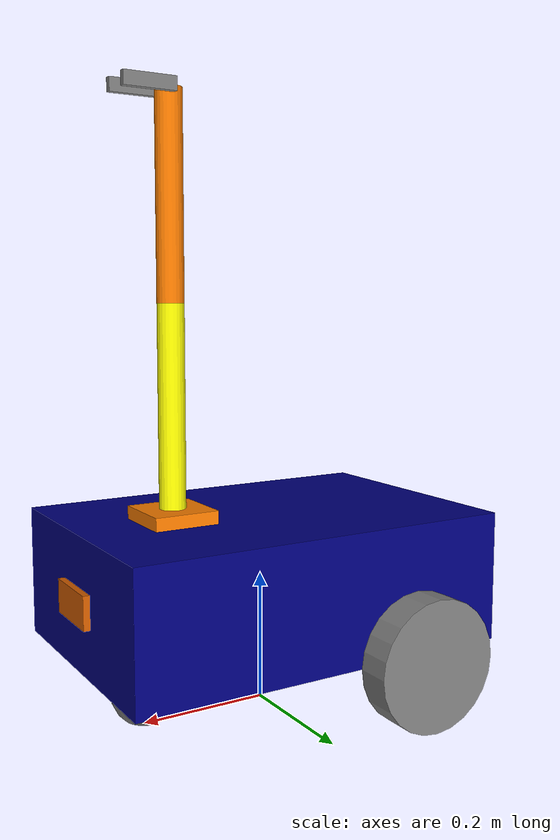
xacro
<?xml version="1.0"?>

<robot name="my_robot" xmlns:xacro="http://www.ros.org/wiki/xacro">

    <xacro:include filename="common_properties.xacro" />
    <xacro:include filename="mobile_base.xacro" />
    <xacro:include filename="mobile_base_gazebo.xacro" />
    <xacro:include filename="camera.xacro" />
    <xacro:include filename="arm.xacro" />

</robot>

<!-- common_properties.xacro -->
<robot xmlns:xacro="http://www.ros.org/wiki/xacro">
    <material name="blue">
        <color rgba="0 0 0.5 1" />
    </material>

    <material name="gray">
        <color rgba="0.5 0.5 0.5 1" />
    </material>

    <material name="orange">
        <color rgba="1 0.5 0 1"/>
    </material>

    <material name="yellow">
        <color rgba="1 1 0 1"/>
    </material>

    <xacro:macro name="box_inertia" params="m x y z o_xyz o_rpy">
        <inertial>
            <mass value="${m}" />
            <origin xyz="${o_xyz}" rpy="${o_rpy}" />
            <inertia ixx="${(m/12) * (y*y + z*z)}" ixy="0" ixz="0"  iyy="${(m/12) * (x*x + z*z)}" iyz="0" izz="${(m/12) * (y*y + x*x)}" />
        </inertial>
    </xacro:macro>

    <xacro:macro name="cylinder_inertia" params="m r l o_xyz o_rpy">
        <inertial>
            <mass value="${m}" />
            <origin xyz="${o_xyz}" rpy="${o_rpy}" />
            <inertia ixx="${(m/12) * (3*r*r + l*l)}" ixy="0" ixz="0"  iyy="${(m/12) * (3*r*r + l*l)}" iyz="0" izz="${(m/2) * (r*r)}" />
        </inertial>
    </xacro:macro>

    <xacro:macro name="sphere_inertia" params="m r o_xyz o_rpy">
        <inertial>
            <mass value="${m}" />
            <origin xyz="${o_xyz}" rpy="${o_rpy}" />
            <inertia ixx="${(2/5) * m * r * r}" ixy="0" ixz="0"  iyy="${(2/5) * m * r * r}" iyz="0" izz="${(2/5) * m * r * r}" />
        </inertial>
    </xacro:macro>

</robot>

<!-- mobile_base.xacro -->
<robot xmlns:xacro="http://www.ros.org/wiki/xacro">

    <xacro:property name="base_length" value="0.6" />
    <xacro:property name="base_width" value="0.4" />
    <xacro:property name="base_height" value="0.2" />
    <xacro:property name="wheel_radius" value="0.1" />
    <xacro:property name="wheel_length" value="0.05" />

     <link name="base_footprint" />

    <link name="base_link">
        <visual>
            <geometry>
                <box size="${base_length} ${base_width} ${base_height}" />
            </geometry>
            <origin xyz="0 0 ${base_height / 2.0}" rpy="0 0 0" />
            <material name="blue" />
        </visual>
        <collision>
            <geometry>
                <box size="${base_length} ${base_width} ${base_height}" />
            </geometry>
            <origin xyz="0 0 ${base_height / 2.0}" rpy="0 0 0" />
        </collision>

        <xacro:box_inertia m="5.0" x="${base_length}" y="${base_width}" z="${base_height}" o_xyz="0 0 ${base_height / 2.0}" o_rpy="0 0 0" />

    </link>

    <xacro:macro name="wheel_link" params="prefix">
        <link name="${prefix}_wheel_link">
            <visual>
                <geometry>
                    <cylinder radius="${wheel_radius}" length="${wheel_length}" />

                </geometry>
                <origin xyz="0 0 0" rpy="1.57 0 0" />
                <material name="gray" />
            </visual>
            <collision>
                <geometry>
                    <sphere radius="${wheel_radius}" />
                </geometry>
                <origin xyz="0 0 0" rpy="0 0 0" />

            </collision>

            <xacro:cylinder_inertia m="1.0" r="${wheel_radius}" l="${wheel_length}" o_xyz="0 0 0" o_rpy="1.57 0 0" />
        </link>
    </xacro:macro>

    <xacro:wheel_link prefix="right" />
    <xacro:wheel_link prefix="left"  />

    <link name="caster_wheel_link">
        <visual>
            <geometry>
                <sphere radius="${wheel_radius / 2.0}" />

            </geometry>
            <origin xyz="0 0 0" rpy="0 0 0" />
            <material name="gray" />
        </visual>

        <collision>
            <geometry>
                <sphere radius="${wheel_radius / 2.0}" />
            </geometry>
            <origin xyz="0 0 0" rpy="0 0 0" />

        </collision>

        <xacro:sphere_inertia m="0.5" r="${wheel_radius / 2.0}" o_xyz="0 0 0" o_rpy="0 0 0" />
    </link>

    <joint name="base_joint" type="fixed">
        <parent link="base_footprint" />
        <child link="base_link" />
        <origin xyz="0 0 ${wheel_radius}" rpy="0 0 0" />
    </joint>

    <joint name="base_right_wheel_joint" type="continuous">
        <parent link="base_link" />
        <child link="right_wheel_link" />
        <origin xyz="${-base_length / 4.0} ${-(base_width + wheel_length) / 2.0} 0" rpy="0 0 0" />
        <axis xyz="0 1 0" />
    </joint>

    <joint name="base_left_wheel_joint" type="continuous">
        <parent link="base_link" />
        <child link="left_wheel_link" />
        <origin xyz="${-base_length / 4.0} ${(base_width + wheel_length) / 2.0} 0" rpy="0 0 0" />
        <axis xyz="0 1 0" />
    </joint>

    <joint name="base_caster_wheel_joint" type="fixed">
        <parent link="base_link" />
        <child link="caster_wheel_link" />
        <origin xyz="${base_length / 3.0} 0 ${-wheel_radius / 2.0}" rpy="0 0 0" />
        <axis xyz="0 0 0" />
    </joint>

    <joint name="mobilebase_to_arm_joint"
           type="fixed">

        <parent link="base_link"/>

        <child link="arm_base_link"/>

        <!-- position of arm on robot -->
        <origin xyz="0.15 0 0.2"
                rpy="0 0 0"/>

    </joint>
</robot>

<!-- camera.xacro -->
<robot xmlns:xacro="http://www.ros.org/wiki/xacro">

    <xacro:property name="camera_length" value="0.01" />
    <xacro:property name="camera_width" value="0.1" />
    <xacro:property name="camera_height" value="0.05" />

    <link name="camera_link">
        <visual>
            <geometry>
                <box size="${camera_length} ${camera_width} ${camera_height}" />
            </geometry>
            <materia name="grey" />
        </visual>
        <collision>
            <geometry>
                <box size="${camera_length} ${camera_width} ${camera_height}" />
            </geometry>
        </collision>
        <xacro:box_inertia m="0.1" x="${camera_length}" y="${camera_width}" z="${camera_height}" o_xyz="0 0 0" o_rpy="0 0 0" />
    </link>

    <joint name="base_camera_joint" type="fixed">
        <parent link="base_link" />
        <child link="camera_link" />
        <origin xyz="${(base_length + camera_length)/2.0} 0 ${base_height/2.0}" rpy="0 0 0" />
    </joint>

    <gazebo reference="camera_link">
        <sensor name="camera" type="camera">

            <update_rate>20</update_rate>

            <camera>
                <horizontal_fov>1.3962634</horizontal_fov>

                <image>
                    <width>640</width>
                    <height>480</height>
                    <format>R8G8B8</format>
                </image>
                <optical_frame_id>camera_link</optical_frame_id>
                <camera_info_topic>camera/camera_info</camera_info_topic>
            </camera>

            <always_on>true</always_on>
            <visualize>true</visualize>

            <topic>camera/image_raw</topic>

        </sensor>
    </gazebo>

</robot>

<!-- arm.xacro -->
<robot xmlns:xacro="http://www.ros.org/wiki/xacro">

    <link name="arm_base_link">
        <visual>
            <origin xyz="0 0 0.01" rpy="0 0 0"/>
            <geometry>
                <box size="0.1 0.1 0.02"/>
            </geometry>
            <material name="orange"/>
        </visual>
        <collision>
            <origin xyz="0 0 0" rpy="0 0 0"/>

            <geometry>
                <box size="0.1 0.1 0.02"/>
            </geometry>
        </collision>
        <inertial>

            <origin xyz="0 0 0" rpy="0 0 0"/>

            <mass value="0.5"/>

            <inertia
                ixx="0.001"
                ixy="0.0"
                ixz="0.0"
                iyy="0.001"
                iyz="0.0"
                izz="0.001"/>
        </inertial>
    </link>

    <link name="forearm_link">
        <visual>

            <origin xyz="0 0 0.15" rpy="0 0 0"/>
            <geometry>
                <cylinder radius="0.02" length="0.3"/>
            </geometry>
            <material name="yellow"/>
        </visual>
        <collision>

            <origin xyz="0 0 0.15"
                    rpy="0 0 0"/>

            <geometry>
                <cylinder radius="0.02" length="0.3" />
            </geometry>

        </collision>

        <inertial>

            <origin xyz="0 0 0.15"
                    rpy="0 0 0"/>

            <mass value="0.3"/>

            <inertia
                ixx="0.001"
                ixy="0.0"
                ixz="0.0"
                iyy="0.001"
                iyz="0.0"
                izz="0.001"/>
        </inertial>
    </link>

    <link name="left_finger_link">

        <visual>
            <origin xyz="0.04 0 0"
                    rpy="0 0 0"/>

            <geometry>
                <box size="0.08 0.01 0.02"/>
            </geometry>

            <material name="gray"/>
        </visual>

        <collision>
            <origin xyz="0.04 0.03 0"
                    rpy="0 0 0"/>

            <geometry>
                <box size="0.08 0.02 0.03"/>
            </geometry>
        </collision>

        <inertial>
            <origin xyz="0.04 0.03 0"
                    rpy="0 0 0"/>

            <mass value="0.05"/>

            <inertia
                ixx="0.0001"
                ixy="0"
                ixz="0"
                iyy="0.0001"
                iyz="0"
                izz="0.0001"/>
        </inertial>

    </link>

    <link name="right_finger_link">

        <visual>
            <origin xyz="0.04 0 0"
                    rpy="0 0 0"/>

            <geometry>
                <box size="0.08 0.01 0.02"/>
            </geometry>

            <material name="gray"/>
        </visual>

        <collision>
            <origin xyz="0.04 -0.03 0"
                    rpy="0 0 0"/>

            <geometry>
                <box size="0.08 0.02 0.03"/>
            </geometry>
        </collision>

        <inertial>
            <origin xyz="0.04 -0.03 0"
                    rpy="0 0 0"/>

            <mass value="0.05"/>

            <inertia
                ixx="0.0001"
                ixy="0"
                ixz="0"
                iyy="0.0001"
                iyz="0"
                izz="0.0001"/>
        </inertial>

    </link>

    <link name="hand_link">
        <visual>
            <origin xyz="0 0 0.15" rpy="0 0 0"/>
            <geometry>
                <cylinder radius="0.02" length="0.3"/>
            </geometry>
            <material name="orange"/>
        </visual>

        <collision>

            <origin xyz="0 0 0.15"
                    rpy="0 0 0"/>

            <geometry>
                <cylinder radius="0.02" length="0.3"/>
            </geometry>

        </collision>

        <inertial>

            <origin xyz="0 0 0.15"
                    rpy="0 0 0"/>

            <mass value="0.3"/>

            <inertia
                ixx="0.001"
                ixy="0.0"
                ixz="0.0"
                iyy="0.001"
                iyz="0.0"
                izz="0.001"/>
        </inertial>
    </link>

    <joint name="base_to_forearm_joint" type="revolute">
        <parent link="arm_base_link"/>
        <child link="forearm_link"/>

        <origin xyz="0 0 0.02" rpy="0 0 0"/>

        <axis xyz="0 1 0"/>

        <limit lower="0" upper="1.57"
               effort="10" velocity="1"/>
        <dynamics
            damping="3.0"
            friction="0.5"/>
    </joint>

    <joint name="forearm_to_hand_joint" type="revolute">
        <parent link="forearm_link"/>
        <child link="hand_link"/>

        <origin xyz="0 0 0.3" rpy="0 0 0"/>

        <axis xyz="0 1 0"/>

        <limit lower="0" upper="1.57"
               effort="10" velocity="1"/>
        <dynamics
            damping="3.0"
            friction="0.5"/>
    </joint>

    <joint name="left_finger_joint"
           type="revolute">

        <parent link="hand_link"/>

        <child link="left_finger_link"/>

        <origin xyz="0 0.025 0.3"
                rpy="0 0 0"/>

        <axis xyz="0 0 1"/>

        <limit
            lower="0"
            upper="0.5"
            effort="10"
            velocity="1"/>

    </joint>

    <joint name="right_finger_joint"
           type="revolute">

        <parent link="hand_link"/>

        <child link="right_finger_link"/>

        <origin xyz="0 -0.025 0.3"
                rpy="0 0 0"/>

        <axis xyz="0 0 -1"/>

        <limit
            lower="0"
            upper="0.5"
            effort="10"
            velocity="1"/>

    </joint>

</robot>
